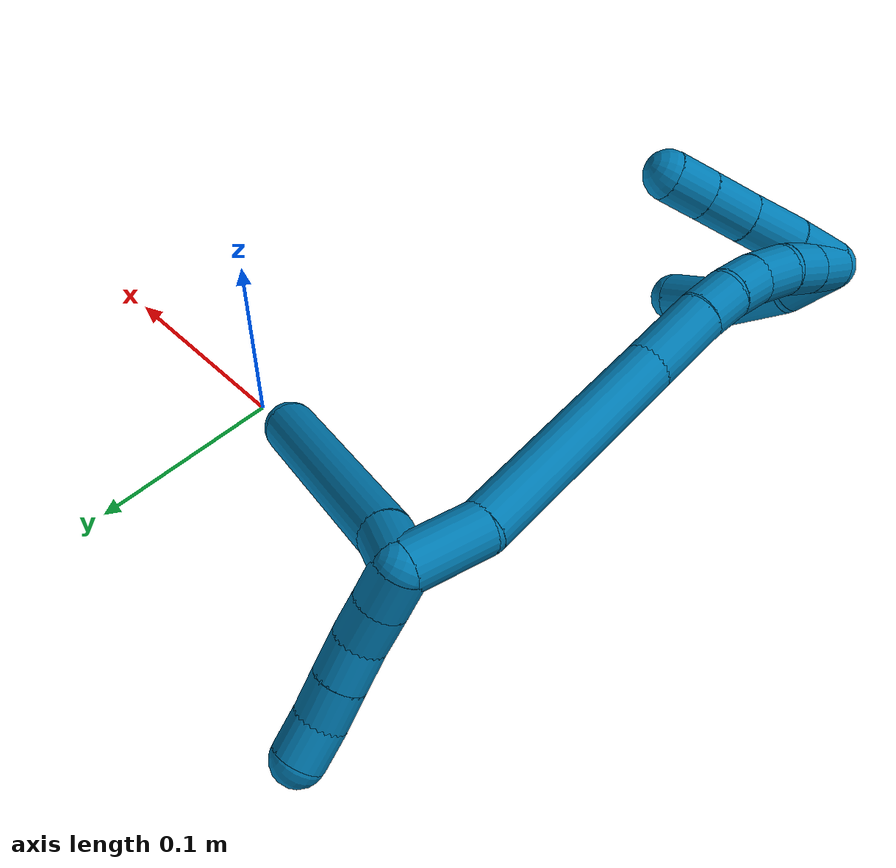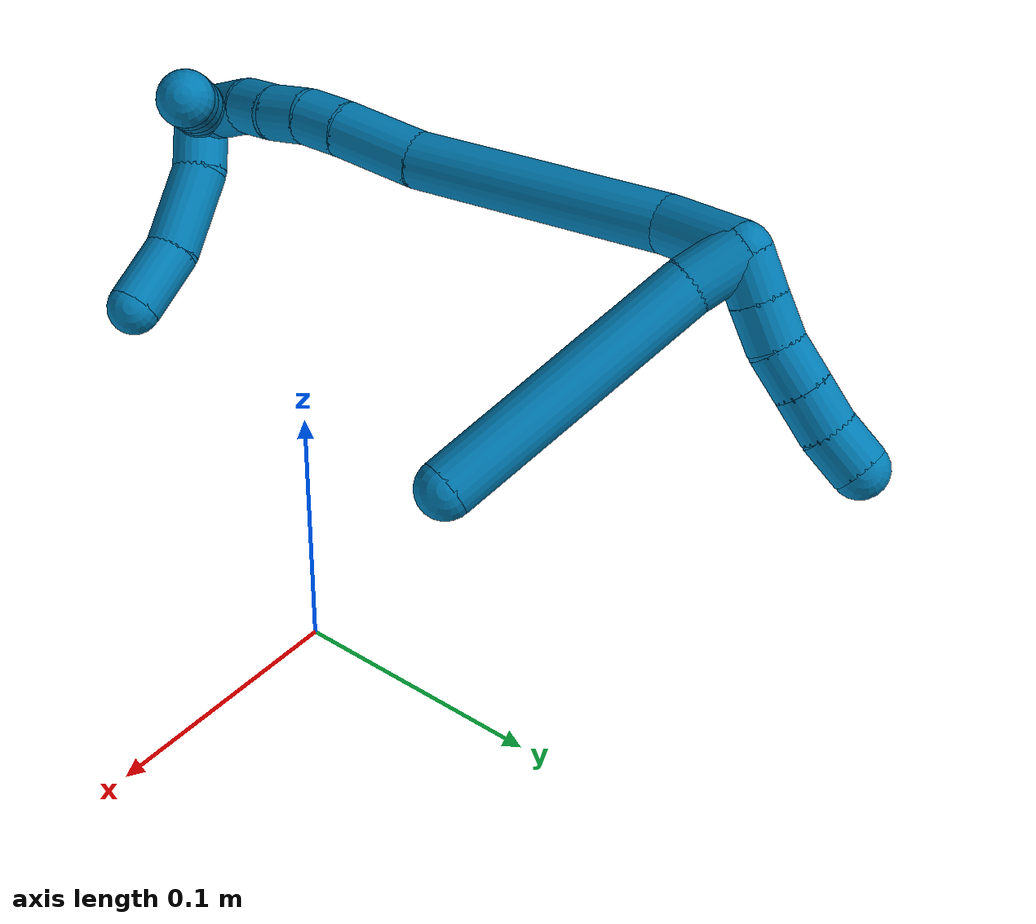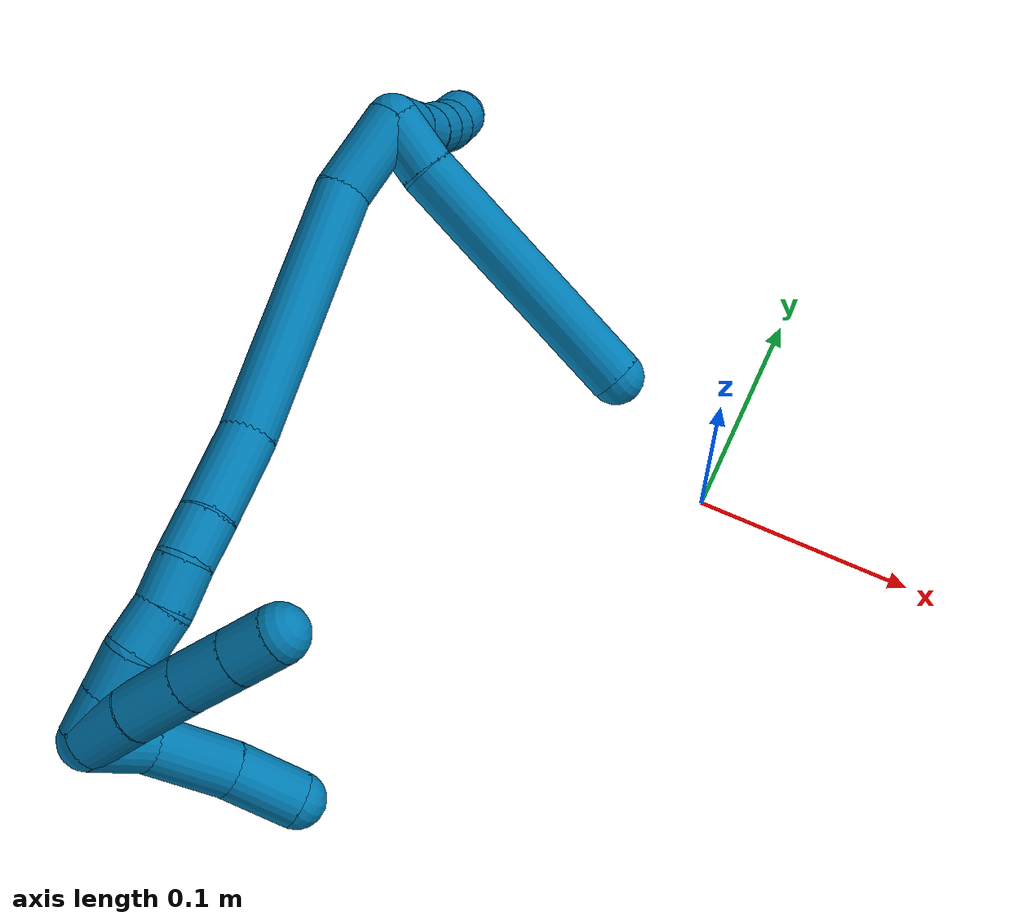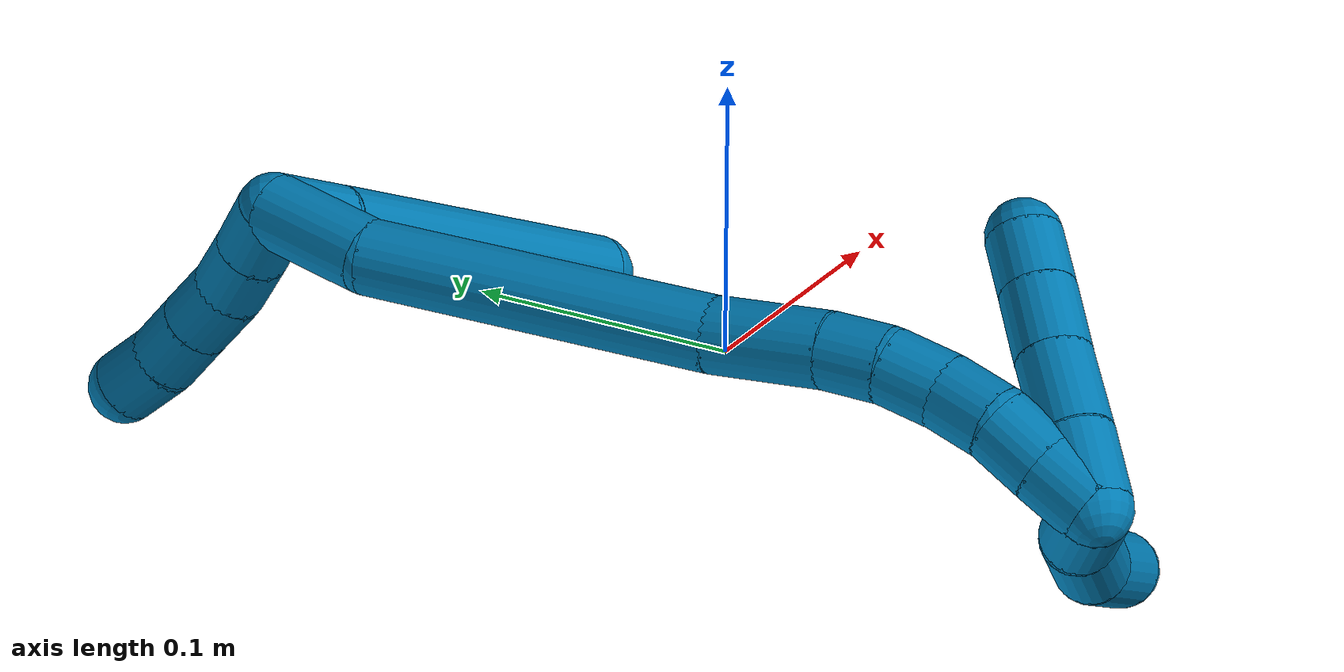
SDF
<sdf version="1.7">
 <world name="default">
  <model name="9">
   <static>0</static>
   <link name="9">
    <collision name="collision-cylinder-e_1_2_8">
     <pose>-0.000344 -0.012959 -0.000842 1.63567 -0.026454 -0.028229</pose>
     <geometry><cylinder><radius>0.0125</radius><length>0.025983</length></cylinder></geometry>
     <surface>
      <friction><ode><mu>1.16</mu><mu2>1.16</mu2><slip1>0</slip1><slip2>0</slip2></ode></friction>
      <contact><ode><kp>1e+06</kp><kd>1</kd><max_vel>0</max_vel><min_depth>0.001</min_depth></ode></contact>
     </surface>
    </collision>
    <visual name="visual-cylinder-e_1_2_8">
     <pose>-0.000344 -0.012959 -0.000842 1.63567 -0.026454 -0.028229</pose>
     <geometry><cylinder><radius>0.0125</radius><length>0.025983</length></cylinder></geometry>
     <material><ambient>0 0.490196 0.709804 1</ambient></material>
    </visual>
    <collision name="collision-cylinder-e_2_8_6">
     <pose>-0.009551 -0.086614 -0.010773 1.71945 -0.143437 -0.166418</pose>
     <geometry><cylinder><radius>0.0125</radius><length>0.124017</length></cylinder></geometry>
     <surface>
      <friction><ode><mu>1.16</mu><mu2>1.16</mu2><slip1>0</slip1><slip2>0</slip2></ode></friction>
      <contact><ode><kp>1e+06</kp><kd>1</kd><max_vel>0</max_vel><min_depth>0.001</min_depth></ode></contact>
     </surface>
    </collision>
    <visual name="visual-cylinder-e_2_8_6">
     <pose>-0.009551 -0.086614 -0.010773 1.71945 -0.143437 -0.166418</pose>
     <geometry><cylinder><radius>0.0125</radius><length>0.124017</length></cylinder></geometry>
     <material><ambient>0 0.490196 0.709804 1</ambient></material>
    </visual>
    <collision name="collision-cylinder-e_1_2_9">
     <pose>-0.009729 -0.001796 0.001457 0.889142 -1.3374 -0.720004</pose>
     <geometry><cylinder><radius>0.0125</radius><length>0.02</length></cylinder></geometry>
     <surface>
      <friction><ode><mu>1.16</mu><mu2>1.16</mu2><slip1>0</slip1><slip2>0</slip2></ode></friction>
      <contact><ode><kp>1e+06</kp><kd>1</kd><max_vel>0</max_vel><min_depth>0.001</min_depth></ode></contact>
     </surface>
    </collision>
    <visual name="visual-cylinder-e_1_2_9">
     <pose>-0.009729 -0.001796 0.001457 0.889142 -1.3374 -0.720004</pose>
     <geometry><cylinder><radius>0.0125</radius><length>0.02</length></cylinder></geometry>
     <material><ambient>0 0.490196 0.709804 1</ambient></material>
    </visual>
    <collision name="collision-cylinder-e_2_9_10">
     <pose>-0.029262 -0.005134 0.00414 0.899161 -1.37251 -0.752771</pose>
     <geometry><cylinder><radius>0.0125</radius><length>0.02</length></cylinder></geometry>
     <surface>
      <friction><ode><mu>1.16</mu><mu2>1.16</mu2><slip1>0</slip1><slip2>0</slip2></ode></friction>
      <contact><ode><kp>1e+06</kp><kd>1</kd><max_vel>0</max_vel><min_depth>0.001</min_depth></ode></contact>
     </surface>
    </collision>
    <visual name="visual-cylinder-e_2_9_10">
     <pose>-0.029262 -0.005134 0.00414 0.899161 -1.37251 -0.752771</pose>
     <geometry><cylinder><radius>0.0125</radius><length>0.02</length></cylinder></geometry>
     <material><ambient>0 0.490196 0.709804 1</ambient></material>
    </visual>
    <collision name="collision-cylinder-e_3_10_11">
     <pose>-0.049008 -0.006407 0.006402 -0.253722 -1.46357 0.228114</pose>
     <geometry><cylinder><radius>0.0125</radius><length>0.02</length></cylinder></geometry>
     <surface>
      <friction><ode><mu>1.16</mu><mu2>1.16</mu2><slip1>0</slip1><slip2>0</slip2></ode></friction>
      <contact><ode><kp>1e+06</kp><kd>1</kd><max_vel>0</max_vel><min_depth>0.001</min_depth></ode></contact>
     </surface>
    </collision>
    <visual name="visual-cylinder-e_3_10_11">
     <pose>-0.049008 -0.006407 0.006402 -0.253722 -1.46357 0.228114</pose>
     <geometry><cylinder><radius>0.0125</radius><length>0.02</length></cylinder></geometry>
     <material><ambient>0 0.490196 0.709804 1</ambient></material>
    </visual>
    <collision name="collision-cylinder-e_4_11_12">
     <pose>-0.068883 -0.005911 0.008582 -0.196726 -1.45385 0.175085</pose>
     <geometry><cylinder><radius>0.0125</radius><length>0.02</length></cylinder></geometry>
     <surface>
      <friction><ode><mu>1.16</mu><mu2>1.16</mu2><slip1>0</slip1><slip2>0</slip2></ode></friction>
      <contact><ode><kp>1e+06</kp><kd>1</kd><max_vel>0</max_vel><min_depth>0.001</min_depth></ode></contact>
     </surface>
    </collision>
    <visual name="visual-cylinder-e_4_11_12">
     <pose>-0.068883 -0.005911 0.008582 -0.196726 -1.45385 0.175085</pose>
     <geometry><cylinder><radius>0.0125</radius><length>0.02</length></cylinder></geometry>
     <material><ambient>0 0.490196 0.709804 1</ambient></material>
    </visual>
    <collision name="collision-cylinder-e_5_12_5">
     <pose>-0.088698 -0.004165 0.009783 -1.53329 -1.41837 1.3814</pose>
     <geometry><cylinder><radius>0.0125</radius><length>0.02</length></cylinder></geometry>
     <surface>
      <friction><ode><mu>1.16</mu><mu2>1.16</mu2><slip1>0</slip1><slip2>0</slip2></ode></friction>
      <contact><ode><kp>1e+06</kp><kd>1</kd><max_vel>0</max_vel><min_depth>0.001</min_depth></ode></contact>
     </surface>
    </collision>
    <visual name="visual-cylinder-e_5_12_5">
     <pose>-0.088698 -0.004165 0.009783 -1.53329 -1.41837 1.3814</pose>
     <geometry><cylinder><radius>0.0125</radius><length>0.02</length></cylinder></geometry>
     <material><ambient>0 0.490196 0.709804 1</ambient></material>
    </visual>
    <collision name="collision-cylinder-e_1_2_13">
     <pose>0.011879 -0.00806 0.013988 0.522737 0.634371 0.175166</pose>
     <geometry><cylinder><radius>0.0125</radius><length>0.040087</length></cylinder></geometry>
     <surface>
      <friction><ode><mu>1.16</mu><mu2>1.16</mu2><slip1>0</slip1><slip2>0</slip2></ode></friction>
      <contact><ode><kp>1e+06</kp><kd>1</kd><max_vel>0</max_vel><min_depth>0.001</min_depth></ode></contact>
     </surface>
    </collision>
    <visual name="visual-cylinder-e_1_2_13">
     <pose>0.011879 -0.00806 0.013988 0.522737 0.634371 0.175166</pose>
     <geometry><cylinder><radius>0.0125</radius><length>0.040087</length></cylinder></geometry>
     <material><ambient>0 0.490196 0.709804 1</ambient></material>
    </visual>
    <collision name="collision-cylinder-e_2_13_14">
     <pose>0.062284 -0.050811 0.057375 0.867794 0.702883 0.33657</pose>
     <geometry><cylinder><radius>0.0125</radius><length>0.119198</length></cylinder></geometry>
     <surface>
      <friction><ode><mu>1.16</mu><mu2>1.16</mu2><slip1>0</slip1><slip2>0</slip2></ode></friction>
      <contact><ode><kp>1e+06</kp><kd>1</kd><max_vel>0</max_vel><min_depth>0.001</min_depth></ode></contact>
     </surface>
    </collision>
    <visual name="visual-cylinder-e_2_13_14">
     <pose>0.062284 -0.050811 0.057375 0.867794 0.702883 0.33657</pose>
     <geometry><cylinder><radius>0.0125</radius><length>0.119198</length></cylinder></geometry>
     <material><ambient>0 0.490196 0.709804 1</ambient></material>
    </visual>
    <collision name="collision-cylinder-e_3_14_15">
     <pose>0.115212 -0.095287 0.095848 0.823056 0.823495 0.376685</pose>
     <geometry><cylinder><radius>0.0125</radius><length>0.039268</length></cylinder></geometry>
     <surface>
      <friction><ode><mu>1.16</mu><mu2>1.16</mu2><slip1>0</slip1><slip2>0</slip2></ode></friction>
      <contact><ode><kp>1e+06</kp><kd>1</kd><max_vel>0</max_vel><min_depth>0.001</min_depth></ode></contact>
     </surface>
    </collision>
    <visual name="visual-cylinder-e_3_14_15">
     <pose>0.115212 -0.095287 0.095848 0.823056 0.823495 0.376685</pose>
     <geometry><cylinder><radius>0.0125</radius><length>0.039268</length></cylinder></geometry>
     <material><ambient>0 0.490196 0.709804 1</ambient></material>
    </visual>
    <collision name="collision-cylinder-e_4_15_16">
     <pose>0.136518 -0.110247 0.110473 0.750333 0.738033 0.302282</pose>
     <geometry><cylinder><radius>0.0125</radius><length>0.020519</length></cylinder></geometry>
     <surface>
      <friction><ode><mu>1.16</mu><mu2>1.16</mu2><slip1>0</slip1><slip2>0</slip2></ode></friction>
      <contact><ode><kp>1e+06</kp><kd>1</kd><max_vel>0</max_vel><min_depth>0.001</min_depth></ode></contact>
     </surface>
    </collision>
    <visual name="visual-cylinder-e_4_15_16">
     <pose>0.136518 -0.110247 0.110473 0.750333 0.738033 0.302282</pose>
     <geometry><cylinder><radius>0.0125</radius><length>0.020519</length></cylinder></geometry>
     <material><ambient>0 0.490196 0.709804 1</ambient></material>
    </visual>
    <collision name="collision-cylinder-e_5_16_17">
     <pose>0.148647 -0.121172 0.122575 0.720392 0.540208 0.207802</pose>
     <geometry><cylinder><radius>0.0125</radius><length>0.020326</length></cylinder></geometry>
     <surface>
      <friction><ode><mu>1.16</mu><mu2>1.16</mu2><slip1>0</slip1><slip2>0</slip2></ode></friction>
      <contact><ode><kp>1e+06</kp><kd>1</kd><max_vel>0</max_vel><min_depth>0.001</min_depth></ode></contact>
     </surface>
    </collision>
    <visual name="visual-cylinder-e_5_16_17">
     <pose>0.148647 -0.121172 0.122575 0.720392 0.540208 0.207802</pose>
     <geometry><cylinder><radius>0.0125</radius><length>0.020326</length></cylinder></geometry>
     <material><ambient>0 0.490196 0.709804 1</ambient></material>
    </visual>
    <collision name="collision-cylinder-e_6_17_18">
     <pose>0.159104 -0.131092 0.13689 0.492897 0.535573 0.137827</pose>
     <geometry><cylinder><radius>0.0125</radius><length>0.020497</length></cylinder></geometry>
     <surface>
      <friction><ode><mu>1.16</mu><mu2>1.16</mu2><slip1>0</slip1><slip2>0</slip2></ode></friction>
      <contact><ode><kp>1e+06</kp><kd>1</kd><max_vel>0</max_vel><min_depth>0.001</min_depth></ode></contact>
     </surface>
    </collision>
    <visual name="visual-cylinder-e_6_17_18">
     <pose>0.159104 -0.131092 0.13689 0.492897 0.535573 0.137827</pose>
     <geometry><cylinder><radius>0.0125</radius><length>0.020497</length></cylinder></geometry>
     <material><ambient>0 0.490196 0.709804 1</ambient></material>
    </visual>
    <collision name="collision-cylinder-e_7_18_19">
     <pose>0.167146 -0.140357 0.152789 0.559464 0.284952 0.082368</pose>
     <geometry><cylinder><radius>0.0125</radius><length>0.020004</length></cylinder></geometry>
     <surface>
      <friction><ode><mu>1.16</mu><mu2>1.16</mu2><slip1>0</slip1><slip2>0</slip2></ode></friction>
      <contact><ode><kp>1e+06</kp><kd>1</kd><max_vel>0</max_vel><min_depth>0.001</min_depth></ode></contact>
     </surface>
    </collision>
    <visual name="visual-cylinder-e_7_18_19">
     <pose>0.167146 -0.140357 0.152789 0.559464 0.284952 0.082368</pose>
     <geometry><cylinder><radius>0.0125</radius><length>0.020004</length></cylinder></geometry>
     <material><ambient>0 0.490196 0.709804 1</ambient></material>
    </visual>
    <collision name="collision-cylinder-e_8_19_1">
     <pose>0.17307 -0.150559 0.169002 0.563876 0.314792 0.091877</pose>
     <geometry><cylinder><radius>0.0125</radius><length>0.020102</length></cylinder></geometry>
     <surface>
      <friction><ode><mu>1.16</mu><mu2>1.16</mu2><slip1>0</slip1><slip2>0</slip2></ode></friction>
      <contact><ode><kp>1e+06</kp><kd>1</kd><max_vel>0</max_vel><min_depth>0.001</min_depth></ode></contact>
     </surface>
    </collision>
    <visual name="visual-cylinder-e_8_19_1">
     <pose>0.17307 -0.150559 0.169002 0.563876 0.314792 0.091877</pose>
     <geometry><cylinder><radius>0.0125</radius><length>0.020102</length></cylinder></geometry>
     <material><ambient>0 0.490196 0.709804 1</ambient></material>
    </visual>
    <collision name="collision-cylinder-e_1_1_20">
     <pose>0.176083 -0.155511 0.164271 -3.12942 -0.007711 1.12935</pose>
     <geometry><cylinder><radius>0.0125</radius><length>0.025619</length></cylinder></geometry>
     <surface>
      <friction><ode><mu>1.16</mu><mu2>1.16</mu2><slip1>0</slip1><slip2>0</slip2></ode></friction>
      <contact><ode><kp>1e+06</kp><kd>1</kd><max_vel>0</max_vel><min_depth>0.001</min_depth></ode></contact>
     </surface>
    </collision>
    <visual name="visual-cylinder-e_1_1_20">
     <pose>0.176083 -0.155511 0.164271 -3.12942 -0.007711 1.12935</pose>
     <geometry><cylinder><radius>0.0125</radius><length>0.025619</length></cylinder></geometry>
     <material><ambient>0 0.490196 0.709804 1</ambient></material>
    </visual>
    <collision name="collision-cylinder-e_2_20_21">
     <pose>0.175173 -0.155529 0.137068 3.12953 -0.056249 -2.71914</pose>
     <geometry><cylinder><radius>0.0125</radius><length>0.028837</length></cylinder></geometry>
     <surface>
      <friction><ode><mu>1.16</mu><mu2>1.16</mu2><slip1>0</slip1><slip2>0</slip2></ode></friction>
      <contact><ode><kp>1e+06</kp><kd>1</kd><max_vel>0</max_vel><min_depth>0.001</min_depth></ode></contact>
     </surface>
    </collision>
    <visual name="visual-cylinder-e_2_20_21">
     <pose>0.175173 -0.155529 0.137068 3.12953 -0.056249 -2.71914</pose>
     <geometry><cylinder><radius>0.0125</radius><length>0.028837</length></cylinder></geometry>
     <material><ambient>0 0.490196 0.709804 1</ambient></material>
    </visual>
    <collision name="collision-cylinder-e_3_21_22">
     <pose>0.173885 -0.15607 0.110345 3.11178 -0.038758 -1.83045</pose>
     <geometry><cylinder><radius>0.0125</radius><length>0.024687</length></cylinder></geometry>
     <surface>
      <friction><ode><mu>1.16</mu><mu2>1.16</mu2><slip1>0</slip1><slip2>0</slip2></ode></friction>
      <contact><ode><kp>1e+06</kp><kd>1</kd><max_vel>0</max_vel><min_depth>0.001</min_depth></ode></contact>
     </surface>
    </collision>
    <visual name="visual-cylinder-e_3_21_22">
     <pose>0.173885 -0.15607 0.110345 3.11178 -0.038758 -1.83045</pose>
     <geometry><cylinder><radius>0.0125</radius><length>0.024687</length></cylinder></geometry>
     <material><ambient>0 0.490196 0.709804 1</ambient></material>
    </visual>
    <collision name="collision-cylinder-e_4_22_4">
     <pose>0.172946 -0.156693 0.087601 3.11702 -0.044165 -2.12621</pose>
     <geometry><cylinder><radius>0.0125</radius><length>0.020857</length></cylinder></geometry>
     <surface>
      <friction><ode><mu>1.16</mu><mu2>1.16</mu2><slip1>0</slip1><slip2>0</slip2></ode></friction>
      <contact><ode><kp>1e+06</kp><kd>1</kd><max_vel>0</max_vel><min_depth>0.001</min_depth></ode></contact>
     </surface>
    </collision>
    <visual name="visual-cylinder-e_4_22_4">
     <pose>0.172946 -0.156693 0.087601 3.11702 -0.044165 -2.12621</pose>
     <geometry><cylinder><radius>0.0125</radius><length>0.020857</length></cylinder></geometry>
     <material><ambient>0 0.490196 0.709804 1</ambient></material>
    </visual>
    <collision name="collision-cylinder-e_1_1_23">
     <pose>0.164788 -0.162809 0.174547 1.9115 -0.983882 -1.2979</pose>
     <geometry><cylinder><radius>0.0125</radius><length>0.027368</length></cylinder></geometry>
     <surface>
      <friction><ode><mu>1.16</mu><mu2>1.16</mu2><slip1>0</slip1><slip2>0</slip2></ode></friction>
      <contact><ode><kp>1e+06</kp><kd>1</kd><max_vel>0</max_vel><min_depth>0.001</min_depth></ode></contact>
     </surface>
    </collision>
    <visual name="visual-cylinder-e_1_1_23">
     <pose>0.164788 -0.162809 0.174547 1.9115 -0.983882 -1.2979</pose>
     <geometry><cylinder><radius>0.0125</radius><length>0.027368</length></cylinder></geometry>
     <material><ambient>0 0.490196 0.709804 1</ambient></material>
    </visual>
    <collision name="collision-cylinder-e_2_23_24">
     <pose>0.140421 -0.184725 0.167572 1.86293 -0.699194 -0.911781</pose>
     <geometry><cylinder><radius>0.0125</radius><length>0.040313</length></cylinder></geometry>
     <surface>
      <friction><ode><mu>1.16</mu><mu2>1.16</mu2><slip1>0</slip1><slip2>0</slip2></ode></friction>
      <contact><ode><kp>1e+06</kp><kd>1</kd><max_vel>0</max_vel><min_depth>0.001</min_depth></ode></contact>
     </surface>
    </collision>
    <visual name="visual-cylinder-e_2_23_24">
     <pose>0.140421 -0.184725 0.167572 1.86293 -0.699194 -0.911781</pose>
     <geometry><cylinder><radius>0.0125</radius><length>0.040313</length></cylinder></geometry>
     <material><ambient>0 0.490196 0.709804 1</ambient></material>
    </visual>
    <collision name="collision-cylinder-e_3_24_3">
     <pose>0.120499 -0.213049 0.157722 1.95048 -0.444547 -0.643847</pose>
     <geometry><cylinder><radius>0.0125</radius><length>0.032319</length></cylinder></geometry>
     <surface>
      <friction><ode><mu>1.16</mu><mu2>1.16</mu2><slip1>0</slip1><slip2>0</slip2></ode></friction>
      <contact><ode><kp>1e+06</kp><kd>1</kd><max_vel>0</max_vel><min_depth>0.001</min_depth></ode></contact>
     </surface>
    </collision>
    <visual name="visual-cylinder-e_3_24_3">
     <pose>0.120499 -0.213049 0.157722 1.95048 -0.444547 -0.643847</pose>
     <geometry><cylinder><radius>0.0125</radius><length>0.032319</length></cylinder></geometry>
     <material><ambient>0 0.490196 0.709804 1</ambient></material>
    </visual>
    <collision name="collision-sphere-3">
     <pose>0.113549 -0.226598 0.152315 0 -0 0</pose>
     <geometry><sphere><radius>0.0125</radius></sphere></geometry>
     <surface>
      <friction><ode><mu>1.16</mu><mu2>1.16</mu2><slip1>0</slip1><slip2>0</slip2></ode></friction>
      <contact><ode><kp>1e+06</kp><kd>1</kd><max_vel>0</max_vel><min_depth>0.001</min_depth></ode></contact>
     </surface>
    </collision>
    <visual name="visual-sphere-3">
     <pose>0.113549 -0.226598 0.152315 0 -0 0</pose>
     <geometry><sphere><radius>0.0125</radius></sphere></geometry>
     <material><ambient>0 0.490196 0.709804 1</ambient></material>
    </visual>
    <collision name="collision-sphere-24">
     <pose>0.127448 -0.199499 0.163129 0 -0 0</pose>
     <geometry><sphere><radius>0.0125</radius></sphere></geometry>
     <surface>
      <friction><ode><mu>1.16</mu><mu2>1.16</mu2><slip1>0</slip1><slip2>0</slip2></ode></friction>
      <contact><ode><kp>1e+06</kp><kd>1</kd><max_vel>0</max_vel><min_depth>0.001</min_depth></ode></contact>
     </surface>
    </collision>
    <visual name="visual-sphere-24">
     <pose>0.127448 -0.199499 0.163129 0 -0 0</pose>
     <geometry><sphere><radius>0.0125</radius></sphere></geometry>
     <material><ambient>0 0.490196 0.709804 1</ambient></material>
    </visual>
    <collision name="collision-sphere-23">
     <pose>0.153394 -0.169952 0.172015 0 -0 0</pose>
     <geometry><sphere><radius>0.0125</radius></sphere></geometry>
     <surface>
      <friction><ode><mu>1.16</mu><mu2>1.16</mu2><slip1>0</slip1><slip2>0</slip2></ode></friction>
      <contact><ode><kp>1e+06</kp><kd>1</kd><max_vel>0</max_vel><min_depth>0.001</min_depth></ode></contact>
     </surface>
    </collision>
    <visual name="visual-sphere-23">
     <pose>0.153394 -0.169952 0.172015 0 -0 0</pose>
     <geometry><sphere><radius>0.0125</radius></sphere></geometry>
     <material><ambient>0 0.490196 0.709804 1</ambient></material>
    </visual>
    <collision name="collision-sphere-4">
     <pose>0.172485 -0.156949 0.077186 0 -0 0</pose>
     <geometry><sphere><radius>0.0125</radius></sphere></geometry>
     <surface>
      <friction><ode><mu>1.16</mu><mu2>1.16</mu2><slip1>0</slip1><slip2>0</slip2></ode></friction>
      <contact><ode><kp>1e+06</kp><kd>1</kd><max_vel>0</max_vel><min_depth>0.001</min_depth></ode></contact>
     </surface>
    </collision>
    <visual name="visual-sphere-4">
     <pose>0.172485 -0.156949 0.077186 0 -0 0</pose>
     <geometry><sphere><radius>0.0125</radius></sphere></geometry>
     <material><ambient>0 0.490196 0.709804 1</ambient></material>
    </visual>
    <collision name="collision-sphere-22">
     <pose>0.173406 -0.156437 0.098016 0 -0 0</pose>
     <geometry><sphere><radius>0.0125</radius></sphere></geometry>
     <surface>
      <friction><ode><mu>1.16</mu><mu2>1.16</mu2><slip1>0</slip1><slip2>0</slip2></ode></friction>
      <contact><ode><kp>1e+06</kp><kd>1</kd><max_vel>0</max_vel><min_depth>0.001</min_depth></ode></contact>
     </surface>
    </collision>
    <visual name="visual-sphere-22">
     <pose>0.173406 -0.156437 0.098016 0 -0 0</pose>
     <geometry><sphere><radius>0.0125</radius></sphere></geometry>
     <material><ambient>0 0.490196 0.709804 1</ambient></material>
    </visual>
    <collision name="collision-sphere-21">
     <pose>0.174363 -0.155702 0.122674 0 -0 0</pose>
     <geometry><sphere><radius>0.0125</radius></sphere></geometry>
     <surface>
      <friction><ode><mu>1.16</mu><mu2>1.16</mu2><slip1>0</slip1><slip2>0</slip2></ode></friction>
      <contact><ode><kp>1e+06</kp><kd>1</kd><max_vel>0</max_vel><min_depth>0.001</min_depth></ode></contact>
     </surface>
    </collision>
    <visual name="visual-sphere-21">
     <pose>0.174363 -0.155702 0.122674 0 -0 0</pose>
     <geometry><sphere><radius>0.0125</radius></sphere></geometry>
     <material><ambient>0 0.490196 0.709804 1</ambient></material>
    </visual>
    <collision name="collision-sphere-20">
     <pose>0.175984 -0.155355 0.151463 0 -0 0</pose>
     <geometry><sphere><radius>0.0125</radius></sphere></geometry>
     <surface>
      <friction><ode><mu>1.16</mu><mu2>1.16</mu2><slip1>0</slip1><slip2>0</slip2></ode></friction>
      <contact><ode><kp>1e+06</kp><kd>1</kd><max_vel>0</max_vel><min_depth>0.001</min_depth></ode></contact>
     </surface>
    </collision>
    <visual name="visual-sphere-20">
     <pose>0.175984 -0.155355 0.151463 0 -0 0</pose>
     <geometry><sphere><radius>0.0125</radius></sphere></geometry>
     <material><ambient>0 0.490196 0.709804 1</ambient></material>
    </visual>
    <collision name="collision-sphere-11">
     <pose>-0.058951 -0.006139 0.007438 0 -0 0</pose>
     <geometry><sphere><radius>0.0125</radius></sphere></geometry>
     <surface>
      <friction><ode><mu>1.16</mu><mu2>1.16</mu2><slip1>0</slip1><slip2>0</slip2></ode></friction>
      <contact><ode><kp>1e+06</kp><kd>1</kd><max_vel>0</max_vel><min_depth>0.001</min_depth></ode></contact>
     </surface>
    </collision>
    <visual name="visual-sphere-11">
     <pose>-0.058951 -0.006139 0.007438 0 -0 0</pose>
     <geometry><sphere><radius>0.0125</radius></sphere></geometry>
     <material><ambient>0 0.490196 0.709804 1</ambient></material>
    </visual>
    <collision name="collision-sphere-10">
     <pose>-0.039066 -0.006676 0.005366 0 -0 0</pose>
     <geometry><sphere><radius>0.0125</radius></sphere></geometry>
     <surface>
      <friction><ode><mu>1.16</mu><mu2>1.16</mu2><slip1>0</slip1><slip2>0</slip2></ode></friction>
      <contact><ode><kp>1e+06</kp><kd>1</kd><max_vel>0</max_vel><min_depth>0.001</min_depth></ode></contact>
     </surface>
    </collision>
    <visual name="visual-sphere-10">
     <pose>-0.039066 -0.006676 0.005366 0 -0 0</pose>
     <geometry><sphere><radius>0.0125</radius></sphere></geometry>
     <material><ambient>0 0.490196 0.709804 1</ambient></material>
    </visual>
    <collision name="collision-sphere-6">
     <pose>-0.018415 -0.147309 -0.019863 0 -0 0</pose>
     <geometry><sphere><radius>0.0125</radius></sphere></geometry>
     <surface>
      <friction><ode><mu>1.16</mu><mu2>1.16</mu2><slip1>0</slip1><slip2>0</slip2></ode></friction>
      <contact><ode><kp>1e+06</kp><kd>1</kd><max_vel>0</max_vel><min_depth>0.001</min_depth></ode></contact>
     </surface>
    </collision>
    <visual name="visual-sphere-6">
     <pose>-0.018415 -0.147309 -0.019863 0 -0 0</pose>
     <geometry><sphere><radius>0.0125</radius></sphere></geometry>
     <material><ambient>0 0.490196 0.709804 1</ambient></material>
    </visual>
    <collision name="collision-sphere-9">
     <pose>-0.019458 -0.003592 0.002915 0 -0 0</pose>
     <geometry><sphere><radius>0.0125</radius></sphere></geometry>
     <surface>
      <friction><ode><mu>1.16</mu><mu2>1.16</mu2><slip1>0</slip1><slip2>0</slip2></ode></friction>
      <contact><ode><kp>1e+06</kp><kd>1</kd><max_vel>0</max_vel><min_depth>0.001</min_depth></ode></contact>
     </surface>
    </collision>
    <visual name="visual-sphere-9">
     <pose>-0.019458 -0.003592 0.002915 0 -0 0</pose>
     <geometry><sphere><radius>0.0125</radius></sphere></geometry>
     <material><ambient>0 0.490196 0.709804 1</ambient></material>
    </visual>
    <collision name="collision-sphere-2">
     <geometry><sphere><radius>0.0125</radius></sphere></geometry>
     <surface>
      <friction><ode><mu>1.16</mu><mu2>1.16</mu2><slip1>0</slip1><slip2>0</slip2></ode></friction>
      <contact><ode><kp>1e+06</kp><kd>1</kd><max_vel>0</max_vel><min_depth>0.001</min_depth></ode></contact>
     </surface>
    </collision>
    <visual name="visual-sphere-2">
     <geometry><sphere><radius>0.0125</radius></sphere></geometry>
     <material><ambient>0 0.490196 0.709804 1</ambient></material>
    </visual>
    <collision name="collision-sphere-19">
     <pose>0.169958 -0.145451 0.160924 0 -0 0</pose>
     <geometry><sphere><radius>0.0125</radius></sphere></geometry>
     <surface>
      <friction><ode><mu>1.16</mu><mu2>1.16</mu2><slip1>0</slip1><slip2>0</slip2></ode></friction>
      <contact><ode><kp>1e+06</kp><kd>1</kd><max_vel>0</max_vel><min_depth>0.001</min_depth></ode></contact>
     </surface>
    </collision>
    <visual name="visual-sphere-19">
     <pose>0.169958 -0.145451 0.160924 0 -0 0</pose>
     <geometry><sphere><radius>0.0125</radius></sphere></geometry>
     <material><ambient>0 0.490196 0.709804 1</ambient></material>
    </visual>
    <collision name="collision-sphere-8">
     <pose>-0.000687 -0.025919 -0.001684 0 -0 0</pose>
     <geometry><sphere><radius>0.0125</radius></sphere></geometry>
     <surface>
      <friction><ode><mu>1.16</mu><mu2>1.16</mu2><slip1>0</slip1><slip2>0</slip2></ode></friction>
      <contact><ode><kp>1e+06</kp><kd>1</kd><max_vel>0</max_vel><min_depth>0.001</min_depth></ode></contact>
     </surface>
    </collision>
    <visual name="visual-sphere-8">
     <pose>-0.000687 -0.025919 -0.001684 0 -0 0</pose>
     <geometry><sphere><radius>0.0125</radius></sphere></geometry>
     <material><ambient>0 0.490196 0.709804 1</ambient></material>
    </visual>
    <collision name="collision-sphere-12">
     <pose>-0.078814 -0.005683 0.009727 0 -0 0</pose>
     <geometry><sphere><radius>0.0125</radius></sphere></geometry>
     <surface>
      <friction><ode><mu>1.16</mu><mu2>1.16</mu2><slip1>0</slip1><slip2>0</slip2></ode></friction>
      <contact><ode><kp>1e+06</kp><kd>1</kd><max_vel>0</max_vel><min_depth>0.001</min_depth></ode></contact>
     </surface>
    </collision>
    <visual name="visual-sphere-12">
     <pose>-0.078814 -0.005683 0.009727 0 -0 0</pose>
     <geometry><sphere><radius>0.0125</radius></sphere></geometry>
     <material><ambient>0 0.490196 0.709804 1</ambient></material>
    </visual>
    <collision name="collision-sphere-5">
     <pose>-0.098583 -0.002648 0.00984 0 -0 0</pose>
     <geometry><sphere><radius>0.0125</radius></sphere></geometry>
     <surface>
      <friction><ode><mu>1.16</mu><mu2>1.16</mu2><slip1>0</slip1><slip2>0</slip2></ode></friction>
      <contact><ode><kp>1e+06</kp><kd>1</kd><max_vel>0</max_vel><min_depth>0.001</min_depth></ode></contact>
     </surface>
    </collision>
    <visual name="visual-sphere-5">
     <pose>-0.098583 -0.002648 0.00984 0 -0 0</pose>
     <geometry><sphere><radius>0.0125</radius></sphere></geometry>
     <material><ambient>0 0.490196 0.709804 1</ambient></material>
    </visual>
    <collision name="collision-sphere-13">
     <pose>0.023758 -0.01612 0.027976 0 -0 0</pose>
     <geometry><sphere><radius>0.0125</radius></sphere></geometry>
     <surface>
      <friction><ode><mu>1.16</mu><mu2>1.16</mu2><slip1>0</slip1><slip2>0</slip2></ode></friction>
      <contact><ode><kp>1e+06</kp><kd>1</kd><max_vel>0</max_vel><min_depth>0.001</min_depth></ode></contact>
     </surface>
    </collision>
    <visual name="visual-sphere-13">
     <pose>0.023758 -0.01612 0.027976 0 -0 0</pose>
     <geometry><sphere><radius>0.0125</radius></sphere></geometry>
     <material><ambient>0 0.490196 0.709804 1</ambient></material>
    </visual>
    <collision name="collision-sphere-14">
     <pose>0.10081 -0.085503 0.086773 0 -0 0</pose>
     <geometry><sphere><radius>0.0125</radius></sphere></geometry>
     <surface>
      <friction><ode><mu>1.16</mu><mu2>1.16</mu2><slip1>0</slip1><slip2>0</slip2></ode></friction>
      <contact><ode><kp>1e+06</kp><kd>1</kd><max_vel>0</max_vel><min_depth>0.001</min_depth></ode></contact>
     </surface>
    </collision>
    <visual name="visual-sphere-14">
     <pose>0.10081 -0.085503 0.086773 0 -0 0</pose>
     <geometry><sphere><radius>0.0125</radius></sphere></geometry>
     <material><ambient>0 0.490196 0.709804 1</ambient></material>
    </visual>
    <collision name="collision-sphere-15">
     <pose>0.129615 -0.105072 0.104922 0 -0 0</pose>
     <geometry><sphere><radius>0.0125</radius></sphere></geometry>
     <surface>
      <friction><ode><mu>1.16</mu><mu2>1.16</mu2><slip1>0</slip1><slip2>0</slip2></ode></friction>
      <contact><ode><kp>1e+06</kp><kd>1</kd><max_vel>0</max_vel><min_depth>0.001</min_depth></ode></contact>
     </surface>
    </collision>
    <visual name="visual-sphere-15">
     <pose>0.129615 -0.105072 0.104922 0 -0 0</pose>
     <geometry><sphere><radius>0.0125</radius></sphere></geometry>
     <material><ambient>0 0.490196 0.709804 1</ambient></material>
    </visual>
    <collision name="collision-sphere-16">
     <pose>0.14342 -0.115423 0.116025 0 -0 0</pose>
     <geometry><sphere><radius>0.0125</radius></sphere></geometry>
     <surface>
      <friction><ode><mu>1.16</mu><mu2>1.16</mu2><slip1>0</slip1><slip2>0</slip2></ode></friction>
      <contact><ode><kp>1e+06</kp><kd>1</kd><max_vel>0</max_vel><min_depth>0.001</min_depth></ode></contact>
     </surface>
    </collision>
    <visual name="visual-sphere-16">
     <pose>0.14342 -0.115423 0.116025 0 -0 0</pose>
     <geometry><sphere><radius>0.0125</radius></sphere></geometry>
     <material><ambient>0 0.490196 0.709804 1</ambient></material>
    </visual>
    <collision name="collision-sphere-17">
     <pose>0.153874 -0.126922 0.129126 0 -0 0</pose>
     <geometry><sphere><radius>0.0125</radius></sphere></geometry>
     <surface>
      <friction><ode><mu>1.16</mu><mu2>1.16</mu2><slip1>0</slip1><slip2>0</slip2></ode></friction>
      <contact><ode><kp>1e+06</kp><kd>1</kd><max_vel>0</max_vel><min_depth>0.001</min_depth></ode></contact>
     </surface>
    </collision>
    <visual name="visual-sphere-17">
     <pose>0.153874 -0.126922 0.129126 0 -0 0</pose>
     <geometry><sphere><radius>0.0125</radius></sphere></geometry>
     <material><ambient>0 0.490196 0.709804 1</ambient></material>
    </visual>
    <collision name="collision-sphere-18">
     <pose>0.164334 -0.135262 0.144654 0 -0 0</pose>
     <geometry><sphere><radius>0.0125</radius></sphere></geometry>
     <surface>
      <friction><ode><mu>1.16</mu><mu2>1.16</mu2><slip1>0</slip1><slip2>0</slip2></ode></friction>
      <contact><ode><kp>1e+06</kp><kd>1</kd><max_vel>0</max_vel><min_depth>0.001</min_depth></ode></contact>
     </surface>
    </collision>
    <visual name="visual-sphere-18">
     <pose>0.164334 -0.135262 0.144654 0 -0 0</pose>
     <geometry><sphere><radius>0.0125</radius></sphere></geometry>
     <material><ambient>0 0.490196 0.709804 1</ambient></material>
    </visual>
    <collision name="collision-sphere-1">
     <pose>0.176182 -0.155667 0.177079 0 -0 0</pose>
     <geometry><sphere><radius>0.0125</radius></sphere></geometry>
     <surface>
      <friction><ode><mu>1.16</mu><mu2>1.16</mu2><slip1>0</slip1><slip2>0</slip2></ode></friction>
      <contact><ode><kp>1e+06</kp><kd>1</kd><max_vel>0</max_vel><min_depth>0.001</min_depth></ode></contact>
     </surface>
    </collision>
    <visual name="visual-sphere-1">
     <pose>0.176182 -0.155667 0.177079 0 -0 0</pose>
     <geometry><sphere><radius>0.0125</radius></sphere></geometry>
     <material><ambient>0 0.490196 0.709804 1</ambient></material>
    </visual>
    <inertial>
     <pose>0.071671 -0.09239 0.071697 0 -0 0</pose>
     <mass>0.75</mass>
     <inertia><ixx>0.00029</ixx><ixy>0</ixy><ixz>0</ixz><iyy>9.8e-05</iyy><iyz>0</iyz><izz>0.000204</izz></inertia>
    </inertial>
   </link>
   <pose>-0.182673 0.065083 0.10831 2.52142 -0.801832 -1.62772</pose>
  </model>
 </world>
</sdf>
